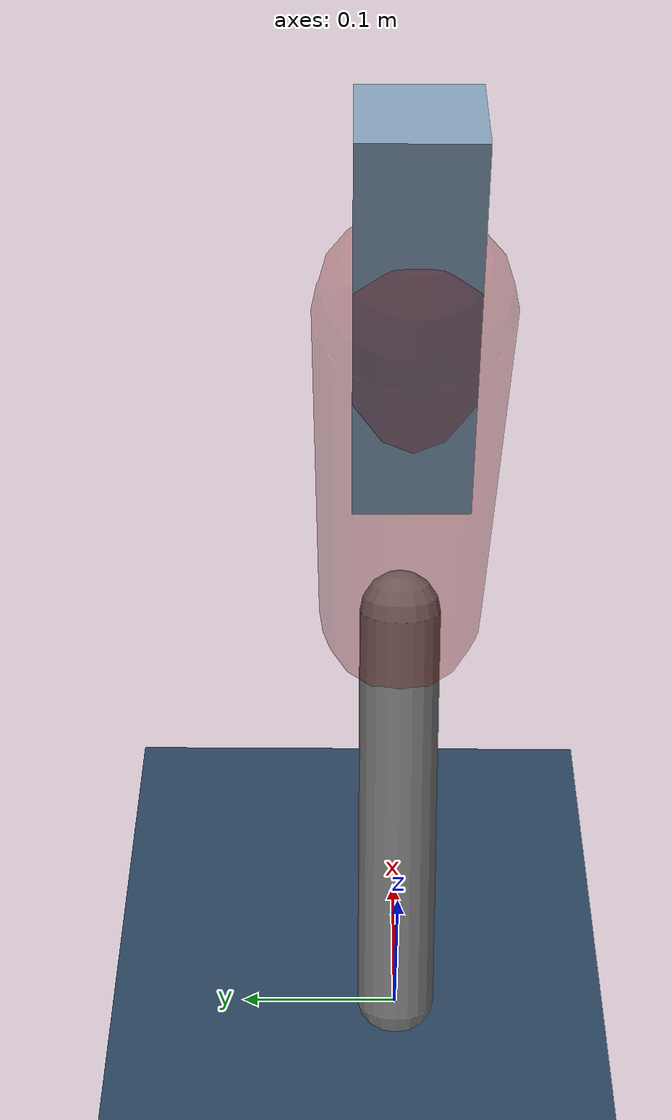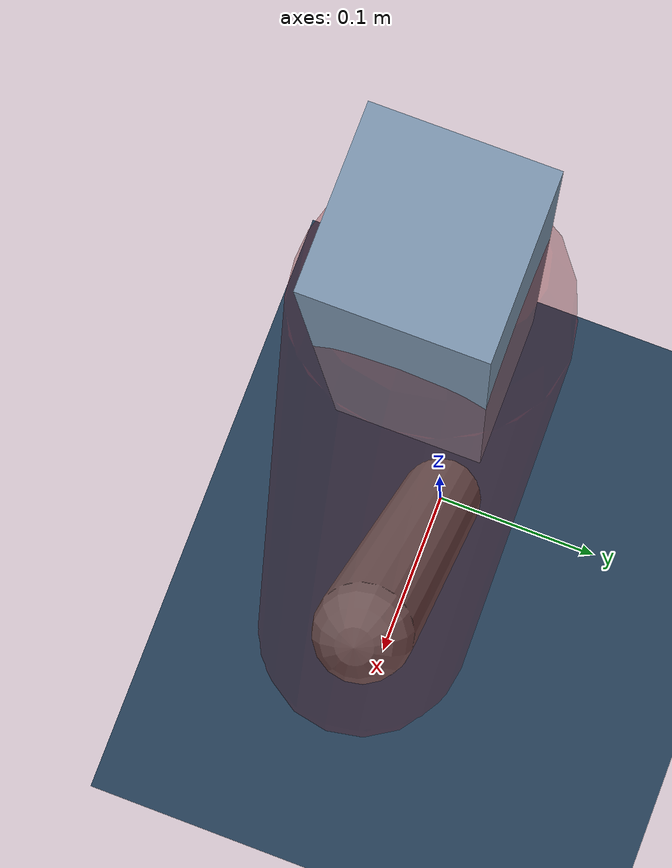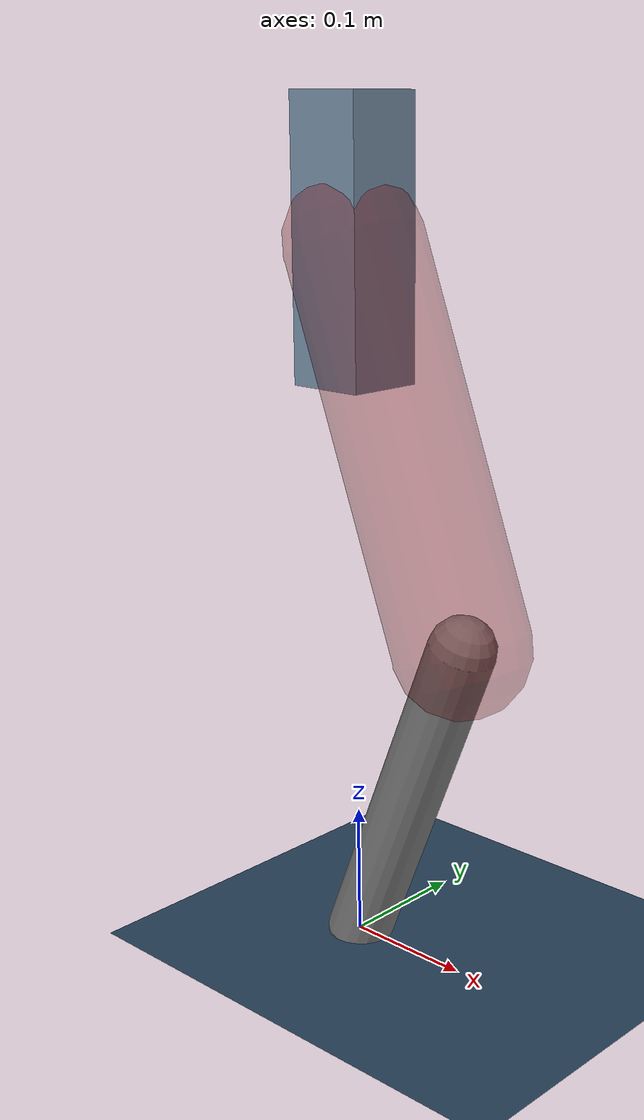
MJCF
<mujoco model="Hopper2D">
	<compiler inertiafromgeom="true" angle="radian" />
	<option timestep="0.001" integrator="implicit" cone="elliptic" solver="Newton" tolerance="1e-10" />

	<default>
		<geom contype="1" conaffinity="1" condim="3" friction="2 0.005 0.0001" solref="0.005 1" />
		<joint limited="true" damping="0.1" />
	</default>

	<asset>
		<texture name="skybox" type="skybox" builtin="gradient" rgb1=".4 .6 .8" rgb2="0 0 0" width="800" height="800" />
		<texture name="grid" type="2d" builtin="checker" rgb1=".1 .2 .3" rgb2=".2 .3 .4" width="300" height="300" mark="edge" markrgb=".2 .3 .4" />
		<material name="ground" texture="grid" texrepeat="1 1" texuniform="true" reflectance="0.1" />
		<material name="leg" rgba="0.5 0.6 0.7 1" />
	</asset>

	<worldbody>

		<geom name="floor" type="plane" size="5 5 0.25" material="ground" />

		<light directional="false" diffuse="0.8 0.8 0.8" specular="0.3 0.3 0.3" pos="0 0 2" dir="0 0 -1" />
		<light mode="targetbodycom" target="base" directional="false" diffuse="0.8 0.8 0.8" specular="0.3 0.3 0.3" pos="0 0 2" dir="0 0 -1" />

		<camera name="fixed" pos="0 -2 1" xyaxes="1 0 0 0 0 1" />
		<camera name="tracking" mode="trackcom" pos="0 -3 1" />

		<body name="root" pos="0 0 0.5278390522779026">
			<joint name="slide_x" type="slide" axis="1 0 0" range="-100 100" />
			<joint name="slide_z" type="slide" axis="0 0 1" range="0 10" />

			<body name="base" pos="0 0 0">
				<geom name="torso" type="box" size="0.03 0.03 0.1" mass="2.942" material="leg" />

				<body name="link1" pos="0 0 0" euler="0 1.2154209725822824 0">
					<joint type="hinge" axis="0 -1 0" pos="0 0 0" name="hinge1" limited="true" range="-3.14 3.14" stiffness="0" damping="0.1" />
					<geom name="thigh" type="capsule" fromto="0 0 0 0.2928337176504205 0 0" size="0.05" rgba="0.5 0 0 0.3" mass="0.9694510376561354" />

					<body name="link2" pos="0.2928337176504205 0 0" euler="0 0.7378137469886626 0">
						<joint type="hinge" axis="0 -1 0" pos="0 0 0" name="hinge2" limited="true" range="-3.14 3.14" stiffness="0" damping="0.1" />
						<geom name="shank" type="capsule" fromto="0 0 0 0.2730269392232549 0 0" size="0.025" mass="0.46142155137860386" />

					</body>
				</body>
			</body>
		</body>
	</worldbody>

	<actuator>
		<motor name="torque1" joint="hinge1" ctrlrange="-124.52128498768997 124.52128498768997" ctrllimited="true" gear="1" />
		<motor name="torque2" joint="hinge2" ctrlrange="-72.79982692620662 72.79982692620662" ctrllimited="true" gear="1" />
	</actuator>
</mujoco>
